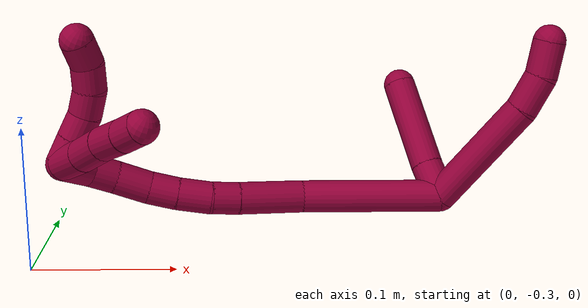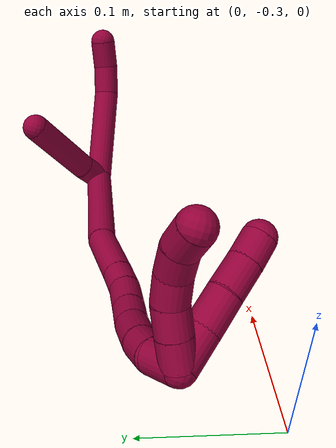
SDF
<sdf version="1.7">
 <world name="default">
  <model name="8">
   <static>0</static>
   <link name="8">
    <collision name="collision-cylinder-e_1_2_8">
     <pose>0.012765 0.000426 -0.045122 -3.13214 0.275681 -3.0735</pose>
     <geometry><cylinder><radius>0.0125</radius><length>0.09379</length></cylinder></geometry>
     <surface>
      <friction><ode><mu>1.16</mu><mu2>1.16</mu2><slip1>0</slip1><slip2>0</slip2></ode></friction>
      <contact><ode><kp>1e+06</kp><kd>1</kd><max_vel>0</max_vel><min_depth>0.001</min_depth></ode></contact>
     </surface>
    </collision>
    <visual name="visual-cylinder-e_1_2_8">
     <pose>0.012765 0.000426 -0.045122 -3.13214 0.275681 -3.0735</pose>
     <geometry><cylinder><radius>0.0125</radius><length>0.09379</length></cylinder></geometry>
     <material><ambient>0.584314 0 0.227451 1</ambient></material>
    </visual>
    <collision name="collision-cylinder-e_2_8_9">
     <pose>0.028566 -0.002165 -0.104118 2.92741 0.210693 1.55424</pose>
     <geometry><cylinder><radius>0.0125</radius><length>0.029039</length></cylinder></geometry>
     <surface>
      <friction><ode><mu>1.16</mu><mu2>1.16</mu2><slip1>0</slip1><slip2>0</slip2></ode></friction>
      <contact><ode><kp>1e+06</kp><kd>1</kd><max_vel>0</max_vel><min_depth>0.001</min_depth></ode></contact>
     </surface>
    </collision>
    <visual name="visual-cylinder-e_2_8_9">
     <pose>0.028566 -0.002165 -0.104118 2.92741 0.210693 1.55424</pose>
     <geometry><cylinder><radius>0.0125</radius><length>0.029039</length></cylinder></geometry>
     <material><ambient>0.584314 0 0.227451 1</ambient></material>
    </visual>
    <collision name="collision-cylinder-e_3_9_6">
     <pose>0.032381 -0.011335 -0.13008 2.67084 0.057322 0.237956</pose>
     <geometry><cylinder><radius>0.0125</radius><length>0.027171</length></cylinder></geometry>
     <surface>
      <friction><ode><mu>1.16</mu><mu2>1.16</mu2><slip1>0</slip1><slip2>0</slip2></ode></friction>
      <contact><ode><kp>1e+06</kp><kd>1</kd><max_vel>0</max_vel><min_depth>0.001</min_depth></ode></contact>
     </surface>
    </collision>
    <visual name="visual-cylinder-e_3_9_6">
     <pose>0.032381 -0.011335 -0.13008 2.67084 0.057322 0.237956</pose>
     <geometry><cylinder><radius>0.0125</radius><length>0.027171</length></cylinder></geometry>
     <material><ambient>0.584314 0 0.227451 1</ambient></material>
    </visual>
    <collision name="collision-cylinder-e_1_2_10">
     <pose>0.000681 -0.012919 -0.003981 1.86974 0.050342 0.068181</pose>
     <geometry><cylinder><radius>0.0125</radius><length>0.027071</length></cylinder></geometry>
     <surface>
      <friction><ode><mu>1.16</mu><mu2>1.16</mu2><slip1>0</slip1><slip2>0</slip2></ode></friction>
      <contact><ode><kp>1e+06</kp><kd>1</kd><max_vel>0</max_vel><min_depth>0.001</min_depth></ode></contact>
     </surface>
    </collision>
    <visual name="visual-cylinder-e_1_2_10">
     <pose>0.000681 -0.012919 -0.003981 1.86974 0.050342 0.068181</pose>
     <geometry><cylinder><radius>0.0125</radius><length>0.027071</length></cylinder></geometry>
     <material><ambient>0.584314 0 0.227451 1</ambient></material>
    </visual>
    <collision name="collision-cylinder-e_2_10_5">
     <pose>0.003828 -0.059594 -0.021529 1.95293 0.067685 0.100103</pose>
     <geometry><cylinder><radius>0.0125</radius><length>0.072929</length></cylinder></geometry>
     <surface>
      <friction><ode><mu>1.16</mu><mu2>1.16</mu2><slip1>0</slip1><slip2>0</slip2></ode></friction>
      <contact><ode><kp>1e+06</kp><kd>1</kd><max_vel>0</max_vel><min_depth>0.001</min_depth></ode></contact>
     </surface>
    </collision>
    <visual name="visual-cylinder-e_2_10_5">
     <pose>0.003828 -0.059594 -0.021529 1.95293 0.067685 0.100103</pose>
     <geometry><cylinder><radius>0.0125</radius><length>0.072929</length></cylinder></geometry>
     <material><ambient>0.584314 0 0.227451 1</ambient></material>
    </visual>
    <collision name="collision-cylinder-e_1_2_11">
     <pose>-0.04087 -0.02738 0.023132 0.869296 -0.850836 -0.414654</pose>
     <geometry><cylinder><radius>0.0125</radius><length>0.108722</length></cylinder></geometry>
     <surface>
      <friction><ode><mu>1.16</mu><mu2>1.16</mu2><slip1>0</slip1><slip2>0</slip2></ode></friction>
      <contact><ode><kp>1e+06</kp><kd>1</kd><max_vel>0</max_vel><min_depth>0.001</min_depth></ode></contact>
     </surface>
    </collision>
    <visual name="visual-cylinder-e_1_2_11">
     <pose>-0.04087 -0.02738 0.023132 0.869296 -0.850836 -0.414654</pose>
     <geometry><cylinder><radius>0.0125</radius><length>0.108722</length></cylinder></geometry>
     <material><ambient>0.584314 0 0.227451 1</ambient></material>
    </visual>
    <collision name="collision-cylinder-e_2_11_12">
     <pose>-0.104531 -0.063678 0.053797 0.869438 -1.0974 -0.553172</pose>
     <geometry><cylinder><radius>0.0125</radius><length>0.051213</length></cylinder></geometry>
     <surface>
      <friction><ode><mu>1.16</mu><mu2>1.16</mu2><slip1>0</slip1><slip2>0</slip2></ode></friction>
      <contact><ode><kp>1e+06</kp><kd>1</kd><max_vel>0</max_vel><min_depth>0.001</min_depth></ode></contact>
     </surface>
    </collision>
    <visual name="visual-cylinder-e_2_11_12">
     <pose>-0.104531 -0.063678 0.053797 0.869438 -1.0974 -0.553172</pose>
     <geometry><cylinder><radius>0.0125</radius><length>0.051213</length></cylinder></geometry>
     <material><ambient>0.584314 0 0.227451 1</ambient></material>
    </visual>
    <collision name="collision-cylinder-e_3_12_13">
     <pose>-0.13652 -0.076724 0.064259 0.953549 -1.0678 -0.592717</pose>
     <geometry><cylinder><radius>0.0125</radius><length>0.020998</length></cylinder></geometry>
     <surface>
      <friction><ode><mu>1.16</mu><mu2>1.16</mu2><slip1>0</slip1><slip2>0</slip2></ode></friction>
      <contact><ode><kp>1e+06</kp><kd>1</kd><max_vel>0</max_vel><min_depth>0.001</min_depth></ode></contact>
     </surface>
    </collision>
    <visual name="visual-cylinder-e_3_12_13">
     <pose>-0.13652 -0.076724 0.064259 0.953549 -1.0678 -0.592717</pose>
     <geometry><cylinder><radius>0.0125</radius><length>0.020998</length></cylinder></geometry>
     <material><ambient>0.584314 0 0.227451 1</ambient></material>
    </visual>
    <collision name="collision-cylinder-e_4_13_14">
     <pose>-0.155956 -0.087717 0.070619 1.10743 -0.927436 -0.599691</pose>
     <geometry><cylinder><radius>0.0125</radius><length>0.02559</length></cylinder></geometry>
     <surface>
      <friction><ode><mu>1.16</mu><mu2>1.16</mu2><slip1>0</slip1><slip2>0</slip2></ode></friction>
      <contact><ode><kp>1e+06</kp><kd>1</kd><max_vel>0</max_vel><min_depth>0.001</min_depth></ode></contact>
     </surface>
    </collision>
    <visual name="visual-cylinder-e_4_13_14">
     <pose>-0.155956 -0.087717 0.070619 1.10743 -0.927436 -0.599691</pose>
     <geometry><cylinder><radius>0.0125</radius><length>0.02559</length></cylinder></geometry>
     <material><ambient>0.584314 0 0.227451 1</ambient></material>
    </visual>
    <collision name="collision-cylinder-e_5_14_15">
     <pose>-0.174938 -0.101088 0.076256 1.24372 -0.905017 -0.670562</pose>
     <geometry><cylinder><radius>0.0125</radius><length>0.02224</length></cylinder></geometry>
     <surface>
      <friction><ode><mu>1.16</mu><mu2>1.16</mu2><slip1>0</slip1><slip2>0</slip2></ode></friction>
      <contact><ode><kp>1e+06</kp><kd>1</kd><max_vel>0</max_vel><min_depth>0.001</min_depth></ode></contact>
     </surface>
    </collision>
    <visual name="visual-cylinder-e_5_14_15">
     <pose>-0.174938 -0.101088 0.076256 1.24372 -0.905017 -0.670562</pose>
     <geometry><cylinder><radius>0.0125</radius><length>0.02224</length></cylinder></geometry>
     <material><ambient>0.584314 0 0.227451 1</ambient></material>
    </visual>
    <collision name="collision-cylinder-e_6_15_16">
     <pose>-0.194947 -0.11505 0.0791 1.48555 -0.984267 -0.914891</pose>
     <geometry><cylinder><radius>0.0125</radius><length>0.027048</length></cylinder></geometry>
     <surface>
      <friction><ode><mu>1.16</mu><mu2>1.16</mu2><slip1>0</slip1><slip2>0</slip2></ode></friction>
      <contact><ode><kp>1e+06</kp><kd>1</kd><max_vel>0</max_vel><min_depth>0.001</min_depth></ode></contact>
     </surface>
    </collision>
    <visual name="visual-cylinder-e_6_15_16">
     <pose>-0.194947 -0.11505 0.0791 1.48555 -0.984267 -0.914891</pose>
     <geometry><cylinder><radius>0.0125</radius><length>0.027048</length></cylinder></geometry>
     <material><ambient>0.584314 0 0.227451 1</ambient></material>
    </visual>
    <collision name="collision-cylinder-e_7_16_17">
     <pose>-0.215435 -0.126801 0.079372 1.65567 -1.13387 -1.21219</pose>
     <geometry><cylinder><radius>0.0125</radius><length>0.020362</length></cylinder></geometry>
     <surface>
      <friction><ode><mu>1.16</mu><mu2>1.16</mu2><slip1>0</slip1><slip2>0</slip2></ode></friction>
      <contact><ode><kp>1e+06</kp><kd>1</kd><max_vel>0</max_vel><min_depth>0.001</min_depth></ode></contact>
     </surface>
    </collision>
    <visual name="visual-cylinder-e_7_16_17">
     <pose>-0.215435 -0.126801 0.079372 1.65567 -1.13387 -1.21219</pose>
     <geometry><cylinder><radius>0.0125</radius><length>0.020362</length></cylinder></geometry>
     <material><ambient>0.584314 0 0.227451 1</ambient></material>
    </visual>
    <collision name="collision-cylinder-e_8_17_1">
     <pose>-0.236242 -0.132698 0.076724 2.52914 -1.33438 -2.37818</pose>
     <geometry><cylinder><radius>0.0125</radius><length>0.023827</length></cylinder></geometry>
     <surface>
      <friction><ode><mu>1.16</mu><mu2>1.16</mu2><slip1>0</slip1><slip2>0</slip2></ode></friction>
      <contact><ode><kp>1e+06</kp><kd>1</kd><max_vel>0</max_vel><min_depth>0.001</min_depth></ode></contact>
     </surface>
    </collision>
    <visual name="visual-cylinder-e_8_17_1">
     <pose>-0.236242 -0.132698 0.076724 2.52914 -1.33438 -2.37818</pose>
     <geometry><cylinder><radius>0.0125</radius><length>0.023827</length></cylinder></geometry>
     <material><ambient>0.584314 0 0.227451 1</ambient></material>
    </visual>
    <collision name="collision-cylinder-e_1_1_18">
     <pose>-0.247446 -0.126803 0.06319 -2.5537 0.027925 -0.09219</pose>
     <geometry><cylinder><radius>0.0125</radius><length>0.027053</length></cylinder></geometry>
     <surface>
      <friction><ode><mu>1.16</mu><mu2>1.16</mu2><slip1>0</slip1><slip2>0</slip2></ode></friction>
      <contact><ode><kp>1e+06</kp><kd>1</kd><max_vel>0</max_vel><min_depth>0.001</min_depth></ode></contact>
     </surface>
    </collision>
    <visual name="visual-cylinder-e_1_1_18">
     <pose>-0.247446 -0.126803 0.06319 -2.5537 0.027925 -0.09219</pose>
     <geometry><cylinder><radius>0.0125</radius><length>0.027053</length></cylinder></geometry>
     <material><ambient>0.584314 0 0.227451 1</ambient></material>
    </visual>
    <collision name="collision-cylinder-e_2_18_19">
     <pose>-0.247016 -0.112486 0.040251 -2.61351 0.003869 -0.01431</pose>
     <geometry><cylinder><radius>0.0125</radius><length>0.027061</length></cylinder></geometry>
     <surface>
      <friction><ode><mu>1.16</mu><mu2>1.16</mu2><slip1>0</slip1><slip2>0</slip2></ode></friction>
      <contact><ode><kp>1e+06</kp><kd>1</kd><max_vel>0</max_vel><min_depth>0.001</min_depth></ode></contact>
     </surface>
    </collision>
    <visual name="visual-cylinder-e_2_18_19">
     <pose>-0.247016 -0.112486 0.040251 -2.61351 0.003869 -0.01431</pose>
     <geometry><cylinder><radius>0.0125</radius><length>0.027061</length></cylinder></geometry>
     <material><ambient>0.584314 0 0.227451 1</ambient></material>
    </visual>
    <collision name="collision-cylinder-e_3_19_20">
     <pose>-0.246564 -0.098494 0.018213 -2.53548 0.031717 -0.101354</pose>
     <geometry><cylinder><radius>0.0125</radius><length>0.025201</length></cylinder></geometry>
     <surface>
      <friction><ode><mu>1.16</mu><mu2>1.16</mu2><slip1>0</slip1><slip2>0</slip2></ode></friction>
      <contact><ode><kp>1e+06</kp><kd>1</kd><max_vel>0</max_vel><min_depth>0.001</min_depth></ode></contact>
     </surface>
    </collision>
    <visual name="visual-cylinder-e_3_19_20">
     <pose>-0.246564 -0.098494 0.018213 -2.53548 0.031717 -0.101354</pose>
     <geometry><cylinder><radius>0.0125</radius><length>0.025201</length></cylinder></geometry>
     <material><ambient>0.584314 0 0.227451 1</ambient></material>
    </visual>
    <collision name="collision-cylinder-e_4_20_4">
     <pose>-0.245639 -0.085883 -0.00092 -2.58736 0.05088 -0.178445</pose>
     <geometry><cylinder><radius>0.0125</radius><length>0.020685</length></cylinder></geometry>
     <surface>
      <friction><ode><mu>1.16</mu><mu2>1.16</mu2><slip1>0</slip1><slip2>0</slip2></ode></friction>
      <contact><ode><kp>1e+06</kp><kd>1</kd><max_vel>0</max_vel><min_depth>0.001</min_depth></ode></contact>
     </surface>
    </collision>
    <visual name="visual-cylinder-e_4_20_4">
     <pose>-0.245639 -0.085883 -0.00092 -2.58736 0.05088 -0.178445</pose>
     <geometry><cylinder><radius>0.0125</radius><length>0.020685</length></cylinder></geometry>
     <material><ambient>0.584314 0 0.227451 1</ambient></material>
    </visual>
    <collision name="collision-cylinder-e_1_1_21">
     <pose>-0.245161 -0.137507 0.06535 2.80259 0.269542 1.34002</pose>
     <geometry><cylinder><radius>0.0125</radius><length>0.02</length></cylinder></geometry>
     <surface>
      <friction><ode><mu>1.16</mu><mu2>1.16</mu2><slip1>0</slip1><slip2>0</slip2></ode></friction>
      <contact><ode><kp>1e+06</kp><kd>1</kd><max_vel>0</max_vel><min_depth>0.001</min_depth></ode></contact>
     </surface>
    </collision>
    <visual name="visual-cylinder-e_1_1_21">
     <pose>-0.245161 -0.137507 0.06535 2.80259 0.269542 1.34002</pose>
     <geometry><cylinder><radius>0.0125</radius><length>0.02</length></cylinder></geometry>
     <material><ambient>0.584314 0 0.227451 1</ambient></material>
    </visual>
    <collision name="collision-cylinder-e_2_21_22">
     <pose>-0.239903 -0.143764 0.047098 2.82016 0.262576 1.36707</pose>
     <geometry><cylinder><radius>0.0125</radius><length>0.02</length></cylinder></geometry>
     <surface>
      <friction><ode><mu>1.16</mu><mu2>1.16</mu2><slip1>0</slip1><slip2>0</slip2></ode></friction>
      <contact><ode><kp>1e+06</kp><kd>1</kd><max_vel>0</max_vel><min_depth>0.001</min_depth></ode></contact>
     </surface>
    </collision>
    <visual name="visual-cylinder-e_2_21_22">
     <pose>-0.239903 -0.143764 0.047098 2.82016 0.262576 1.36707</pose>
     <geometry><cylinder><radius>0.0125</radius><length>0.02</length></cylinder></geometry>
     <material><ambient>0.584314 0 0.227451 1</ambient></material>
    </visual>
    <collision name="collision-cylinder-e_3_22_23">
     <pose>-0.237603 -0.149715 0.028369 2.8472 -0.029633 -0.199216</pose>
     <geometry><cylinder><radius>0.0125</radius><length>0.02</length></cylinder></geometry>
     <surface>
      <friction><ode><mu>1.16</mu><mu2>1.16</mu2><slip1>0</slip1><slip2>0</slip2></ode></friction>
      <contact><ode><kp>1e+06</kp><kd>1</kd><max_vel>0</max_vel><min_depth>0.001</min_depth></ode></contact>
     </surface>
    </collision>
    <visual name="visual-cylinder-e_3_22_23">
     <pose>-0.237603 -0.149715 0.028369 2.8472 -0.029633 -0.199216</pose>
     <geometry><cylinder><radius>0.0125</radius><length>0.02</length></cylinder></geometry>
     <material><ambient>0.584314 0 0.227451 1</ambient></material>
    </visual>
    <collision name="collision-cylinder-e_4_23_24">
     <pose>-0.240563 -0.156704 0.010075 2.7035 -0.269647 -1.09449</pose>
     <geometry><cylinder><radius>0.0125</radius><length>0.02</length></cylinder></geometry>
     <surface>
      <friction><ode><mu>1.16</mu><mu2>1.16</mu2><slip1>0</slip1><slip2>0</slip2></ode></friction>
      <contact><ode><kp>1e+06</kp><kd>1</kd><max_vel>0</max_vel><min_depth>0.001</min_depth></ode></contact>
     </surface>
    </collision>
    <visual name="visual-cylinder-e_4_23_24">
     <pose>-0.240563 -0.156704 0.010075 2.7035 -0.269647 -1.09449</pose>
     <geometry><cylinder><radius>0.0125</radius><length>0.02</length></cylinder></geometry>
     <material><ambient>0.584314 0 0.227451 1</ambient></material>
    </visual>
    <collision name="collision-cylinder-e_5_24_3">
     <pose>-0.248844 -0.164294 -0.006149 2.70464 -0.596396 -1.89047</pose>
     <geometry><cylinder><radius>0.0125</radius><length>0.02</length></cylinder></geometry>
     <surface>
      <friction><ode><mu>1.16</mu><mu2>1.16</mu2><slip1>0</slip1><slip2>0</slip2></ode></friction>
      <contact><ode><kp>1e+06</kp><kd>1</kd><max_vel>0</max_vel><min_depth>0.001</min_depth></ode></contact>
     </surface>
    </collision>
    <visual name="visual-cylinder-e_5_24_3">
     <pose>-0.248844 -0.164294 -0.006149 2.70464 -0.596396 -1.89047</pose>
     <geometry><cylinder><radius>0.0125</radius><length>0.02</length></cylinder></geometry>
     <material><ambient>0.584314 0 0.227451 1</ambient></material>
    </visual>
    <collision name="collision-sphere-3">
     <pose>-0.254461 -0.167795 -0.013646 0 -0 0</pose>
     <geometry><sphere><radius>0.0125</radius></sphere></geometry>
     <surface>
      <friction><ode><mu>1.16</mu><mu2>1.16</mu2><slip1>0</slip1><slip2>0</slip2></ode></friction>
      <contact><ode><kp>1e+06</kp><kd>1</kd><max_vel>0</max_vel><min_depth>0.001</min_depth></ode></contact>
     </surface>
    </collision>
    <visual name="visual-sphere-3">
     <pose>-0.254461 -0.167795 -0.013646 0 -0 0</pose>
     <geometry><sphere><radius>0.0125</radius></sphere></geometry>
     <material><ambient>0.584314 0 0.227451 1</ambient></material>
    </visual>
    <collision name="collision-sphere-24">
     <pose>-0.243227 -0.160793 0.001347 0 -0 0</pose>
     <geometry><sphere><radius>0.0125</radius></sphere></geometry>
     <surface>
      <friction><ode><mu>1.16</mu><mu2>1.16</mu2><slip1>0</slip1><slip2>0</slip2></ode></friction>
      <contact><ode><kp>1e+06</kp><kd>1</kd><max_vel>0</max_vel><min_depth>0.001</min_depth></ode></contact>
     </surface>
    </collision>
    <visual name="visual-sphere-24">
     <pose>-0.243227 -0.160793 0.001347 0 -0 0</pose>
     <geometry><sphere><radius>0.0125</radius></sphere></geometry>
     <material><ambient>0.584314 0 0.227451 1</ambient></material>
    </visual>
    <collision name="collision-sphere-23">
     <pose>-0.237899 -0.152615 0.018804 0 -0 0</pose>
     <geometry><sphere><radius>0.0125</radius></sphere></geometry>
     <surface>
      <friction><ode><mu>1.16</mu><mu2>1.16</mu2><slip1>0</slip1><slip2>0</slip2></ode></friction>
      <contact><ode><kp>1e+06</kp><kd>1</kd><max_vel>0</max_vel><min_depth>0.001</min_depth></ode></contact>
     </surface>
    </collision>
    <visual name="visual-sphere-23">
     <pose>-0.237899 -0.152615 0.018804 0 -0 0</pose>
     <geometry><sphere><radius>0.0125</radius></sphere></geometry>
     <material><ambient>0.584314 0 0.227451 1</ambient></material>
    </visual>
    <collision name="collision-sphere-22">
     <pose>-0.237307 -0.146815 0.037935 0 -0 0</pose>
     <geometry><sphere><radius>0.0125</radius></sphere></geometry>
     <surface>
      <friction><ode><mu>1.16</mu><mu2>1.16</mu2><slip1>0</slip1><slip2>0</slip2></ode></friction>
      <contact><ode><kp>1e+06</kp><kd>1</kd><max_vel>0</max_vel><min_depth>0.001</min_depth></ode></contact>
     </surface>
    </collision>
    <visual name="visual-sphere-22">
     <pose>-0.237307 -0.146815 0.037935 0 -0 0</pose>
     <geometry><sphere><radius>0.0125</radius></sphere></geometry>
     <material><ambient>0.584314 0 0.227451 1</ambient></material>
    </visual>
    <collision name="collision-sphere-21">
     <pose>-0.242498 -0.140713 0.05626 0 -0 0</pose>
     <geometry><sphere><radius>0.0125</radius></sphere></geometry>
     <surface>
      <friction><ode><mu>1.16</mu><mu2>1.16</mu2><slip1>0</slip1><slip2>0</slip2></ode></friction>
      <contact><ode><kp>1e+06</kp><kd>1</kd><max_vel>0</max_vel><min_depth>0.001</min_depth></ode></contact>
     </surface>
    </collision>
    <visual name="visual-sphere-21">
     <pose>-0.242498 -0.140713 0.05626 0 -0 0</pose>
     <geometry><sphere><radius>0.0125</radius></sphere></geometry>
     <material><ambient>0.584314 0 0.227451 1</ambient></material>
    </visual>
    <collision name="collision-sphere-4">
     <pose>-0.245113 -0.080447 -0.009703 0 -0 0</pose>
     <geometry><sphere><radius>0.0125</radius></sphere></geometry>
     <surface>
      <friction><ode><mu>1.16</mu><mu2>1.16</mu2><slip1>0</slip1><slip2>0</slip2></ode></friction>
      <contact><ode><kp>1e+06</kp><kd>1</kd><max_vel>0</max_vel><min_depth>0.001</min_depth></ode></contact>
     </surface>
    </collision>
    <visual name="visual-sphere-4">
     <pose>-0.245113 -0.080447 -0.009703 0 -0 0</pose>
     <geometry><sphere><radius>0.0125</radius></sphere></geometry>
     <material><ambient>0.584314 0 0.227451 1</ambient></material>
    </visual>
    <collision name="collision-sphere-20">
     <pose>-0.246165 -0.091319 0.007862 0 -0 0</pose>
     <geometry><sphere><radius>0.0125</radius></sphere></geometry>
     <surface>
      <friction><ode><mu>1.16</mu><mu2>1.16</mu2><slip1>0</slip1><slip2>0</slip2></ode></friction>
      <contact><ode><kp>1e+06</kp><kd>1</kd><max_vel>0</max_vel><min_depth>0.001</min_depth></ode></contact>
     </surface>
    </collision>
    <visual name="visual-sphere-20">
     <pose>-0.246165 -0.091319 0.007862 0 -0 0</pose>
     <geometry><sphere><radius>0.0125</radius></sphere></geometry>
     <material><ambient>0.584314 0 0.227451 1</ambient></material>
    </visual>
    <collision name="collision-sphere-5">
     <pose>0.006295 -0.093351 -0.035096 0 -0 0</pose>
     <geometry><sphere><radius>0.0125</radius></sphere></geometry>
     <surface>
      <friction><ode><mu>1.16</mu><mu2>1.16</mu2><slip1>0</slip1><slip2>0</slip2></ode></friction>
      <contact><ode><kp>1e+06</kp><kd>1</kd><max_vel>0</max_vel><min_depth>0.001</min_depth></ode></contact>
     </surface>
    </collision>
    <visual name="visual-sphere-5">
     <pose>0.006295 -0.093351 -0.035096 0 -0 0</pose>
     <geometry><sphere><radius>0.0125</radius></sphere></geometry>
     <material><ambient>0.584314 0 0.227451 1</ambient></material>
    </visual>
    <collision name="collision-sphere-10">
     <pose>0.001362 -0.025837 -0.007962 0 -0 0</pose>
     <geometry><sphere><radius>0.0125</radius></sphere></geometry>
     <surface>
      <friction><ode><mu>1.16</mu><mu2>1.16</mu2><slip1>0</slip1><slip2>0</slip2></ode></friction>
      <contact><ode><kp>1e+06</kp><kd>1</kd><max_vel>0</max_vel><min_depth>0.001</min_depth></ode></contact>
     </surface>
    </collision>
    <visual name="visual-sphere-10">
     <pose>0.001362 -0.025837 -0.007962 0 -0 0</pose>
     <geometry><sphere><radius>0.0125</radius></sphere></geometry>
     <material><ambient>0.584314 0 0.227451 1</ambient></material>
    </visual>
    <collision name="collision-sphere-6">
     <pose>0.03316 -0.017486 -0.142168 0 -0 0</pose>
     <geometry><sphere><radius>0.0125</radius></sphere></geometry>
     <surface>
      <friction><ode><mu>1.16</mu><mu2>1.16</mu2><slip1>0</slip1><slip2>0</slip2></ode></friction>
      <contact><ode><kp>1e+06</kp><kd>1</kd><max_vel>0</max_vel><min_depth>0.001</min_depth></ode></contact>
     </surface>
    </collision>
    <visual name="visual-sphere-6">
     <pose>0.03316 -0.017486 -0.142168 0 -0 0</pose>
     <geometry><sphere><radius>0.0125</radius></sphere></geometry>
     <material><ambient>0.584314 0 0.227451 1</ambient></material>
    </visual>
    <collision name="collision-sphere-9">
     <pose>0.031603 -0.005183 -0.117992 0 -0 0</pose>
     <geometry><sphere><radius>0.0125</radius></sphere></geometry>
     <surface>
      <friction><ode><mu>1.16</mu><mu2>1.16</mu2><slip1>0</slip1><slip2>0</slip2></ode></friction>
      <contact><ode><kp>1e+06</kp><kd>1</kd><max_vel>0</max_vel><min_depth>0.001</min_depth></ode></contact>
     </surface>
    </collision>
    <visual name="visual-sphere-9">
     <pose>0.031603 -0.005183 -0.117992 0 -0 0</pose>
     <geometry><sphere><radius>0.0125</radius></sphere></geometry>
     <material><ambient>0.584314 0 0.227451 1</ambient></material>
    </visual>
    <collision name="collision-sphere-2">
     <geometry><sphere><radius>0.0125</radius></sphere></geometry>
     <surface>
      <friction><ode><mu>1.16</mu><mu2>1.16</mu2><slip1>0</slip1><slip2>0</slip2></ode></friction>
      <contact><ode><kp>1e+06</kp><kd>1</kd><max_vel>0</max_vel><min_depth>0.001</min_depth></ode></contact>
     </surface>
    </collision>
    <visual name="visual-sphere-2">
     <geometry><sphere><radius>0.0125</radius></sphere></geometry>
     <material><ambient>0.584314 0 0.227451 1</ambient></material>
    </visual>
    <collision name="collision-sphere-19">
     <pose>-0.246964 -0.105669 0.028564 0 -0 0</pose>
     <geometry><sphere><radius>0.0125</radius></sphere></geometry>
     <surface>
      <friction><ode><mu>1.16</mu><mu2>1.16</mu2><slip1>0</slip1><slip2>0</slip2></ode></friction>
      <contact><ode><kp>1e+06</kp><kd>1</kd><max_vel>0</max_vel><min_depth>0.001</min_depth></ode></contact>
     </surface>
    </collision>
    <visual name="visual-sphere-19">
     <pose>-0.246964 -0.105669 0.028564 0 -0 0</pose>
     <geometry><sphere><radius>0.0125</radius></sphere></geometry>
     <material><ambient>0.584314 0 0.227451 1</ambient></material>
    </visual>
    <collision name="collision-sphere-8">
     <pose>0.02553 0.000853 -0.090244 0 -0 0</pose>
     <geometry><sphere><radius>0.0125</radius></sphere></geometry>
     <surface>
      <friction><ode><mu>1.16</mu><mu2>1.16</mu2><slip1>0</slip1><slip2>0</slip2></ode></friction>
      <contact><ode><kp>1e+06</kp><kd>1</kd><max_vel>0</max_vel><min_depth>0.001</min_depth></ode></contact>
     </surface>
    </collision>
    <visual name="visual-sphere-8">
     <pose>0.02553 0.000853 -0.090244 0 -0 0</pose>
     <geometry><sphere><radius>0.0125</radius></sphere></geometry>
     <material><ambient>0.584314 0 0.227451 1</ambient></material>
    </visual>
    <collision name="collision-sphere-11">
     <pose>-0.08174 -0.054759 0.046264 0 -0 0</pose>
     <geometry><sphere><radius>0.0125</radius></sphere></geometry>
     <surface>
      <friction><ode><mu>1.16</mu><mu2>1.16</mu2><slip1>0</slip1><slip2>0</slip2></ode></friction>
      <contact><ode><kp>1e+06</kp><kd>1</kd><max_vel>0</max_vel><min_depth>0.001</min_depth></ode></contact>
     </surface>
    </collision>
    <visual name="visual-sphere-11">
     <pose>-0.08174 -0.054759 0.046264 0 -0 0</pose>
     <geometry><sphere><radius>0.0125</radius></sphere></geometry>
     <material><ambient>0.584314 0 0.227451 1</ambient></material>
    </visual>
    <collision name="collision-sphere-12">
     <pose>-0.127321 -0.072597 0.06133 0 -0 0</pose>
     <geometry><sphere><radius>0.0125</radius></sphere></geometry>
     <surface>
      <friction><ode><mu>1.16</mu><mu2>1.16</mu2><slip1>0</slip1><slip2>0</slip2></ode></friction>
      <contact><ode><kp>1e+06</kp><kd>1</kd><max_vel>0</max_vel><min_depth>0.001</min_depth></ode></contact>
     </surface>
    </collision>
    <visual name="visual-sphere-12">
     <pose>-0.127321 -0.072597 0.06133 0 -0 0</pose>
     <geometry><sphere><radius>0.0125</radius></sphere></geometry>
     <material><ambient>0.584314 0 0.227451 1</ambient></material>
    </visual>
    <collision name="collision-sphere-13">
     <pose>-0.145718 -0.080851 0.067188 0 -0 0</pose>
     <geometry><sphere><radius>0.0125</radius></sphere></geometry>
     <surface>
      <friction><ode><mu>1.16</mu><mu2>1.16</mu2><slip1>0</slip1><slip2>0</slip2></ode></friction>
      <contact><ode><kp>1e+06</kp><kd>1</kd><max_vel>0</max_vel><min_depth>0.001</min_depth></ode></contact>
     </surface>
    </collision>
    <visual name="visual-sphere-13">
     <pose>-0.145718 -0.080851 0.067188 0 -0 0</pose>
     <geometry><sphere><radius>0.0125</radius></sphere></geometry>
     <material><ambient>0.584314 0 0.227451 1</ambient></material>
    </visual>
    <collision name="collision-sphere-14">
     <pose>-0.166193 -0.094584 0.07405 0 -0 0</pose>
     <geometry><sphere><radius>0.0125</radius></sphere></geometry>
     <surface>
      <friction><ode><mu>1.16</mu><mu2>1.16</mu2><slip1>0</slip1><slip2>0</slip2></ode></friction>
      <contact><ode><kp>1e+06</kp><kd>1</kd><max_vel>0</max_vel><min_depth>0.001</min_depth></ode></contact>
     </surface>
    </collision>
    <visual name="visual-sphere-14">
     <pose>-0.166193 -0.094584 0.07405 0 -0 0</pose>
     <geometry><sphere><radius>0.0125</radius></sphere></geometry>
     <material><ambient>0.584314 0 0.227451 1</ambient></material>
    </visual>
    <collision name="collision-sphere-15">
     <pose>-0.183683 -0.107592 0.078463 0 -0 0</pose>
     <geometry><sphere><radius>0.0125</radius></sphere></geometry>
     <surface>
      <friction><ode><mu>1.16</mu><mu2>1.16</mu2><slip1>0</slip1><slip2>0</slip2></ode></friction>
      <contact><ode><kp>1e+06</kp><kd>1</kd><max_vel>0</max_vel><min_depth>0.001</min_depth></ode></contact>
     </surface>
    </collision>
    <visual name="visual-sphere-15">
     <pose>-0.183683 -0.107592 0.078463 0 -0 0</pose>
     <geometry><sphere><radius>0.0125</radius></sphere></geometry>
     <material><ambient>0.584314 0 0.227451 1</ambient></material>
    </visual>
    <collision name="collision-sphere-16">
     <pose>-0.20621 -0.122508 0.079738 0 -0 0</pose>
     <geometry><sphere><radius>0.0125</radius></sphere></geometry>
     <surface>
      <friction><ode><mu>1.16</mu><mu2>1.16</mu2><slip1>0</slip1><slip2>0</slip2></ode></friction>
      <contact><ode><kp>1e+06</kp><kd>1</kd><max_vel>0</max_vel><min_depth>0.001</min_depth></ode></contact>
     </surface>
    </collision>
    <visual name="visual-sphere-16">
     <pose>-0.20621 -0.122508 0.079738 0 -0 0</pose>
     <geometry><sphere><radius>0.0125</radius></sphere></geometry>
     <material><ambient>0.584314 0 0.227451 1</ambient></material>
    </visual>
    <collision name="collision-sphere-17">
     <pose>-0.22466 -0.131094 0.079007 0 -0 0</pose>
     <geometry><sphere><radius>0.0125</radius></sphere></geometry>
     <surface>
      <friction><ode><mu>1.16</mu><mu2>1.16</mu2><slip1>0</slip1><slip2>0</slip2></ode></friction>
      <contact><ode><kp>1e+06</kp><kd>1</kd><max_vel>0</max_vel><min_depth>0.001</min_depth></ode></contact>
     </surface>
    </collision>
    <visual name="visual-sphere-17">
     <pose>-0.22466 -0.131094 0.079007 0 -0 0</pose>
     <geometry><sphere><radius>0.0125</radius></sphere></geometry>
     <material><ambient>0.584314 0 0.227451 1</ambient></material>
    </visual>
    <collision name="collision-sphere-1">
     <pose>-0.247824 -0.134302 0.074441 0 -0 0</pose>
     <geometry><sphere><radius>0.0125</radius></sphere></geometry>
     <surface>
      <friction><ode><mu>1.16</mu><mu2>1.16</mu2><slip1>0</slip1><slip2>0</slip2></ode></friction>
      <contact><ode><kp>1e+06</kp><kd>1</kd><max_vel>0</max_vel><min_depth>0.001</min_depth></ode></contact>
     </surface>
    </collision>
    <visual name="visual-sphere-1">
     <pose>-0.247824 -0.134302 0.074441 0 -0 0</pose>
     <geometry><sphere><radius>0.0125</radius></sphere></geometry>
     <material><ambient>0.584314 0 0.227451 1</ambient></material>
    </visual>
    <collision name="collision-sphere-18">
     <pose>-0.247069 -0.119304 0.051938 0 -0 0</pose>
     <geometry><sphere><radius>0.0125</radius></sphere></geometry>
     <surface>
      <friction><ode><mu>1.16</mu><mu2>1.16</mu2><slip1>0</slip1><slip2>0</slip2></ode></friction>
      <contact><ode><kp>1e+06</kp><kd>1</kd><max_vel>0</max_vel><min_depth>0.001</min_depth></ode></contact>
     </surface>
    </collision>
    <visual name="visual-sphere-18">
     <pose>-0.247069 -0.119304 0.051938 0 -0 0</pose>
     <geometry><sphere><radius>0.0125</radius></sphere></geometry>
     <material><ambient>0.584314 0 0.227451 1</ambient></material>
    </visual>
    <inertial>
     <pose>-0.108726 -0.069329 0.012496 0 -0 0</pose>
     <mass>0.75</mass>
     <inertia><ixx>7e-06</ixx><ixy>0</ixy><ixz>0</ixz><iyy>0.000108</iyy><iyz>0</iyz><izz>0.000161</izz></inertia>
    </inertial>
   </link>
   <pose>0.29502 -0.177562 0.011493 -2.6046 0.152906 0.737246</pose>
  </model>
 </world>
</sdf>
